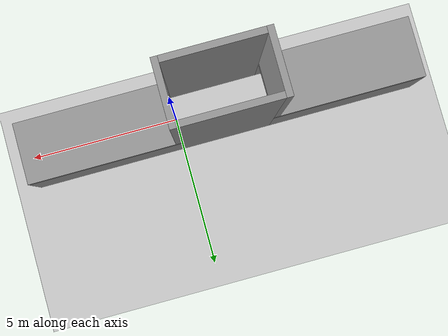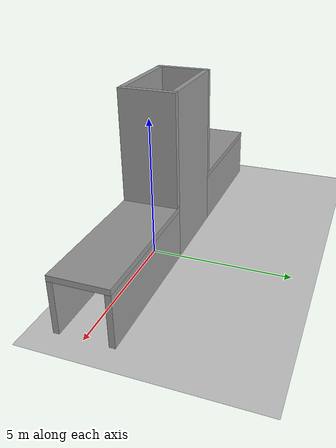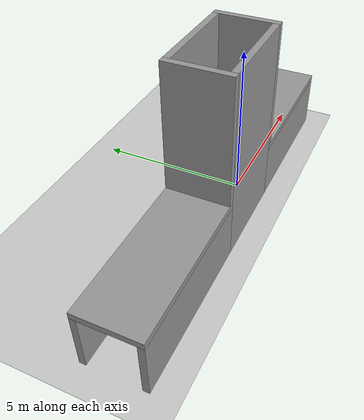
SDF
<sdf version="1.6">
 <world name="default">
  <light name="sun" type="directional">
   <pose>0 0 10 0 -0 0</pose>
   <diffuse>0.8 0.8 0.8 1</diffuse>
   <specular>0.2 0.2 0.2 1</specular>
   <attenuation>
    <range>1000</range>
    <constant>0.9</constant>
    <linear>0.01</linear>
    <quadratic>0.001</quadratic>
   </attenuation>
   <direction>-0.5 0.1 -0.9</direction>
  </light>
  <model name="ground_plane">
   <static>1</static>
   <link name="link">
    <collision name="collision">
     <geometry><plane><normal>0 0 1</normal><size>100 100</size></plane></geometry>
     <surface><friction><ode><mu>100</mu><mu2>50</mu2></ode></friction></surface>
    </collision>
    <visual name="visual">
     <cast_shadows>0</cast_shadows>
     <geometry><plane><normal>0 0 1</normal><size>100 100</size></plane></geometry>
     <material>
      <script><uri>file://media/materials/scripts/gazebo.material</uri><name>Gazebo/Grey</name></script>
     </material>
    </visual>
   </link>
  </model>
  <gravity>0 0 -9.8</gravity>
  <magnetic_field>6e-06 2.3e-05 -4.2e-05</magnetic_field>
  <atmosphere type="adiabatic"/>
  <physics name="default_physics" default="0" type="ode">
   <max_step_size>0.001</max_step_size>
   <real_time_factor>1</real_time_factor>
   <real_time_update_rate>1000</real_time_update_rate>
  </physics>
  <scene><ambient>0.4 0.4 0.4 1</ambient><background>0.7 0.7 0.7 1</background><shadows>1</shadows></scene>
  <spherical_coordinates>
   <surface_model>EARTH_WGS84</surface_model>
   <latitude_deg>0</latitude_deg>
   <longitude_deg>0</longitude_deg>
   <elevation>0</elevation>
   <heading_deg>0</heading_deg>
  </spherical_coordinates>
  <model name="tunel">
   <link name="link_0">
    <inertial>
     <mass>1</mass>
     <inertia>
      <ixx>0.166667</ixx>
      <ixy>0</ixy>
      <ixz>0</ixz>
      <iyy>0.166667</iyy>
      <iyz>0</iyz>
      <izz>0.166667</izz>
     </inertia>
    </inertial>
    <pose>4 0.9 -1.24 0 -0 0</pose>
    <visual name="visual">
     <geometry><box><size>5 0.2 1.8</size></box></geometry>
     <material>
      <lighting>1</lighting>
      <script><uri>file://media/materials/scripts/gazebo.material</uri><name>Gazebo/Grey</name></script>
      <shader type="pixel"><normal_map>__default__</normal_map></shader>
      <ambient>0.3 0.3 0.3 1</ambient>
      <diffuse>0.7 0.7 0.7 1</diffuse>
      <specular>0.01 0.01 0.01 1</specular>
      <emissive>0 0 0 1</emissive>
     </material>
    </visual>
    <collision name="collision">
     <geometry><box><size>5 0.2 1.8</size></box></geometry>
     <surface>
      <friction>
       <ode><mu>1</mu><mu2>1</mu2><fdir1>0 0 0</fdir1><slip1>0</slip1><slip2>0</slip2></ode>
       <torsional>
        <coefficient>1</coefficient>
        <patch_radius>0</patch_radius>
        <surface_radius>0</surface_radius>
        <use_patch_radius>1</use_patch_radius>
        <ode><slip>0</slip></ode>
       </torsional>
      </friction>
      <bounce><restitution_coefficient>0</restitution_coefficient><threshold>1e+06</threshold></bounce>
      <contact>
       <collide_without_contact>0</collide_without_contact>
       <collide_without_contact_bitmask>1</collide_without_contact_bitmask>
       <collide_bitmask>1</collide_bitmask>
       <ode>
        <soft_cfm>0</soft_cfm>
        <soft_erp>0.2</soft_erp>
        <kp>1e+13</kp>
        <kd>1</kd>
        <max_vel>0.01</max_vel>
        <min_depth>0</min_depth>
       </ode>
       <bullet>
        <split_impulse>1</split_impulse>
        <split_impulse_penetration_threshold>-0.01</split_impulse_penetration_threshold>
        <soft_cfm>0</soft_cfm>
        <soft_erp>0.2</soft_erp>
        <kp>1e+13</kp>
        <kd>1</kd>
       </bullet>
      </contact>
     </surface>
    </collision>
   </link>
   <link name="link_0_clone">
    <inertial>
     <mass>1</mass>
     <inertia>
      <ixx>0.166667</ixx>
      <ixy>0</ixy>
      <ixz>0</ixz>
      <iyy>0.166667</iyy>
      <iyz>0</iyz>
      <izz>0.166667</izz>
     </inertia>
    </inertial>
    <pose>4 -0.9 -1.24 0 -0 0</pose>
    <visual name="visual">
     <geometry><box><size>5 0.2 1.8</size></box></geometry>
     <material>
      <lighting>1</lighting>
      <script><uri>file://media/materials/scripts/gazebo.material</uri><name>Gazebo/Grey</name></script>
      <shader type="pixel"><normal_map>__default__</normal_map></shader>
      <ambient>0.3 0.3 0.3 1</ambient>
      <diffuse>0.7 0.7 0.7 1</diffuse>
      <specular>0.01 0.01 0.01 1</specular>
      <emissive>0 0 0 1</emissive>
     </material>
    </visual>
    <collision name="collision">
     <geometry><box><size>5 0.2 1.8</size></box></geometry>
     <surface>
      <friction>
       <ode><mu>1</mu><mu2>1</mu2><fdir1>0 0 0</fdir1><slip1>0</slip1><slip2>0</slip2></ode>
       <torsional>
        <coefficient>1</coefficient>
        <patch_radius>0</patch_radius>
        <surface_radius>0</surface_radius>
        <use_patch_radius>1</use_patch_radius>
        <ode><slip>0</slip></ode>
       </torsional>
      </friction>
      <bounce><restitution_coefficient>0</restitution_coefficient><threshold>1e+06</threshold></bounce>
      <contact>
       <collide_without_contact>0</collide_without_contact>
       <collide_without_contact_bitmask>1</collide_without_contact_bitmask>
       <collide_bitmask>1</collide_bitmask>
       <ode>
        <soft_cfm>0</soft_cfm>
        <soft_erp>0.2</soft_erp>
        <kp>1e+13</kp>
        <kd>1</kd>
        <max_vel>0.01</max_vel>
        <min_depth>0</min_depth>
       </ode>
       <bullet>
        <split_impulse>1</split_impulse>
        <split_impulse_penetration_threshold>-0.01</split_impulse_penetration_threshold>
        <soft_cfm>0</soft_cfm>
        <soft_erp>0.2</soft_erp>
        <kp>1e+13</kp>
        <kd>1</kd>
       </bullet>
      </contact>
     </surface>
    </collision>
   </link>
   <link name="link_0_clone_0">
    <inertial>
     <mass>1</mass>
     <inertia>
      <ixx>0.166667</ixx>
      <ixy>0</ixy>
      <ixz>0</ixz>
      <iyy>0.166667</iyy>
      <iyz>0</iyz>
      <izz>0.166667</izz>
     </inertia>
    </inertial>
    <pose>-4 0.9 -1.24 0 -0 0</pose>
    <visual name="visual">
     <geometry><box><size>5 0.2 1.8</size></box></geometry>
     <material>
      <lighting>1</lighting>
      <script><uri>file://media/materials/scripts/gazebo.material</uri><name>Gazebo/Grey</name></script>
      <shader type="pixel"><normal_map>__default__</normal_map></shader>
      <ambient>0.3 0.3 0.3 1</ambient>
      <diffuse>0.7 0.7 0.7 1</diffuse>
      <specular>0.01 0.01 0.01 1</specular>
      <emissive>0 0 0 1</emissive>
     </material>
    </visual>
    <collision name="collision">
     <geometry><box><size>5 0.2 1.8</size></box></geometry>
     <surface>
      <friction>
       <ode><mu>1</mu><mu2>1</mu2><fdir1>0 0 0</fdir1><slip1>0</slip1><slip2>0</slip2></ode>
       <torsional>
        <coefficient>1</coefficient>
        <patch_radius>0</patch_radius>
        <surface_radius>0</surface_radius>
        <use_patch_radius>1</use_patch_radius>
        <ode><slip>0</slip></ode>
       </torsional>
      </friction>
      <bounce><restitution_coefficient>0</restitution_coefficient><threshold>1e+06</threshold></bounce>
      <contact>
       <collide_without_contact>0</collide_without_contact>
       <collide_without_contact_bitmask>1</collide_without_contact_bitmask>
       <collide_bitmask>1</collide_bitmask>
       <ode>
        <soft_cfm>0</soft_cfm>
        <soft_erp>0.2</soft_erp>
        <kp>1e+13</kp>
        <kd>1</kd>
        <max_vel>0.01</max_vel>
        <min_depth>0</min_depth>
       </ode>
       <bullet>
        <split_impulse>1</split_impulse>
        <split_impulse_penetration_threshold>-0.01</split_impulse_penetration_threshold>
        <soft_cfm>0</soft_cfm>
        <soft_erp>0.2</soft_erp>
        <kp>1e+13</kp>
        <kd>1</kd>
       </bullet>
      </contact>
     </surface>
    </collision>
   </link>
   <link name="link_0_clone_clone">
    <inertial>
     <mass>1</mass>
     <inertia>
      <ixx>0.166667</ixx>
      <ixy>0</ixy>
      <ixz>0</ixz>
      <iyy>0.166667</iyy>
      <iyz>0</iyz>
      <izz>0.166667</izz>
     </inertia>
    </inertial>
    <pose>-4 -0.9 -1.24 0 -0 0</pose>
    <visual name="visual">
     <geometry><box><size>5 0.2 1.8</size></box></geometry>
     <material>
      <lighting>1</lighting>
      <script><uri>file://media/materials/scripts/gazebo.material</uri><name>Gazebo/Grey</name></script>
      <shader type="pixel"><normal_map>__default__</normal_map></shader>
      <ambient>0.3 0.3 0.3 1</ambient>
      <diffuse>0.7 0.7 0.7 1</diffuse>
      <specular>0.01 0.01 0.01 1</specular>
      <emissive>0 0 0 1</emissive>
     </material>
    </visual>
    <collision name="collision">
     <geometry><box><size>5 0.2 1.8</size></box></geometry>
     <surface>
      <friction>
       <ode><mu>1</mu><mu2>1</mu2><fdir1>0 0 0</fdir1><slip1>0</slip1><slip2>0</slip2></ode>
       <torsional>
        <coefficient>1</coefficient>
        <patch_radius>0</patch_radius>
        <surface_radius>0</surface_radius>
        <use_patch_radius>1</use_patch_radius>
        <ode><slip>0</slip></ode>
       </torsional>
      </friction>
      <bounce><restitution_coefficient>0</restitution_coefficient><threshold>1e+06</threshold></bounce>
      <contact>
       <collide_without_contact>0</collide_without_contact>
       <collide_without_contact_bitmask>1</collide_without_contact_bitmask>
       <collide_bitmask>1</collide_bitmask>
       <ode>
        <soft_cfm>0</soft_cfm>
        <soft_erp>0.2</soft_erp>
        <kp>1e+13</kp>
        <kd>1</kd>
        <max_vel>0.01</max_vel>
        <min_depth>0</min_depth>
       </ode>
       <bullet>
        <split_impulse>1</split_impulse>
        <split_impulse_penetration_threshold>-0.01</split_impulse_penetration_threshold>
        <soft_cfm>0</soft_cfm>
        <soft_erp>0.2</soft_erp>
        <kp>1e+13</kp>
        <kd>1</kd>
       </bullet>
      </contact>
     </surface>
    </collision>
   </link>
   <link name="link_1">
    <inertial>
     <mass>1.08843</mass>
     <inertia><ixx>0.141859</ixx><ixy>0</ixy><ixz>0</ixz><iyy>1.45366</iyy><iyz>0</iyz><izz>1.58664</izz></inertia>
    </inertial>
    <pose>4 0 -0.24 0 -0 0</pose>
    <visual name="visual">
     <geometry><box><size>5 2 0.2</size></box></geometry>
     <material>
      <lighting>1</lighting>
      <script><uri>file://media/materials/scripts/gazebo.material</uri><name>Gazebo/Grey</name></script>
      <shader type="pixel"><normal_map>__default__</normal_map></shader>
      <ambient>0.3 0.3 0.3 1</ambient>
      <diffuse>0.7 0.7 0.7 1</diffuse>
      <specular>0.01 0.01 0.01 1</specular>
      <emissive>0 0 0 1</emissive>
     </material>
    </visual>
    <collision name="collision">
     <geometry><box><size>5 2 0.2</size></box></geometry>
     <surface>
      <friction>
       <ode><mu>1</mu><mu2>1</mu2><fdir1>0 0 0</fdir1><slip1>0</slip1><slip2>0</slip2></ode>
       <torsional>
        <coefficient>1</coefficient>
        <patch_radius>0</patch_radius>
        <surface_radius>0</surface_radius>
        <use_patch_radius>1</use_patch_radius>
        <ode><slip>0</slip></ode>
       </torsional>
      </friction>
      <bounce><restitution_coefficient>0</restitution_coefficient><threshold>1e+06</threshold></bounce>
      <contact>
       <collide_without_contact>0</collide_without_contact>
       <collide_without_contact_bitmask>1</collide_without_contact_bitmask>
       <collide_bitmask>1</collide_bitmask>
       <ode>
        <soft_cfm>0</soft_cfm>
        <soft_erp>0.2</soft_erp>
        <kp>1e+13</kp>
        <kd>1</kd>
        <max_vel>0.01</max_vel>
        <min_depth>0</min_depth>
       </ode>
       <bullet>
        <split_impulse>1</split_impulse>
        <split_impulse_penetration_threshold>-0.01</split_impulse_penetration_threshold>
        <soft_cfm>0</soft_cfm>
        <soft_erp>0.2</soft_erp>
        <kp>1e+13</kp>
        <kd>1</kd>
       </bullet>
      </contact>
     </surface>
    </collision>
   </link>
   <link name="link_1_clone">
    <inertial>
     <mass>1.08843</mass>
     <inertia><ixx>0.141859</ixx><ixy>0</ixy><ixz>0</ixz><iyy>1.45366</iyy><iyz>0</iyz><izz>1.58664</izz></inertia>
    </inertial>
    <pose>-4 0 -0.24 0 -0 0</pose>
    <visual name="visual">
     <geometry><box><size>5 2 0.2</size></box></geometry>
     <material>
      <lighting>1</lighting>
      <script><uri>file://media/materials/scripts/gazebo.material</uri><name>Gazebo/Grey</name></script>
      <shader type="pixel"><normal_map>__default__</normal_map></shader>
      <ambient>0.3 0.3 0.3 1</ambient>
      <diffuse>0.7 0.7 0.7 1</diffuse>
      <specular>0.01 0.01 0.01 1</specular>
      <emissive>0 0 0 1</emissive>
     </material>
    </visual>
    <collision name="collision">
     <geometry><box><size>5 2 0.2</size></box></geometry>
     <surface>
      <friction>
       <ode><mu>1</mu><mu2>1</mu2><fdir1>0 0 0</fdir1><slip1>0</slip1><slip2>0</slip2></ode>
       <torsional>
        <coefficient>1</coefficient>
        <patch_radius>0</patch_radius>
        <surface_radius>0</surface_radius>
        <use_patch_radius>1</use_patch_radius>
        <ode><slip>0</slip></ode>
       </torsional>
      </friction>
      <bounce><restitution_coefficient>0</restitution_coefficient><threshold>1e+06</threshold></bounce>
      <contact>
       <collide_without_contact>0</collide_without_contact>
       <collide_without_contact_bitmask>1</collide_without_contact_bitmask>
       <collide_bitmask>1</collide_bitmask>
       <ode>
        <soft_cfm>0</soft_cfm>
        <soft_erp>0.2</soft_erp>
        <kp>1e+13</kp>
        <kd>1</kd>
        <max_vel>0.01</max_vel>
        <min_depth>0</min_depth>
       </ode>
       <bullet>
        <split_impulse>1</split_impulse>
        <split_impulse_penetration_threshold>-0.01</split_impulse_penetration_threshold>
        <soft_cfm>0</soft_cfm>
        <soft_erp>0.2</soft_erp>
        <kp>1e+13</kp>
        <kd>1</kd>
       </bullet>
      </contact>
     </surface>
    </collision>
   </link>
   <link name="link_2">
    <inertial>
     <mass>2.08237</mass>
     <inertia><ixx>6.19248</ixx><ixy>0</ixy><ixz>0</ixz><iyy>7.0406</iyy><iyz>0</iyz><izz>0.856734</izz></inertia>
    </inertial>
    <pose>0 -0.9 0.86 0 -0 0</pose>
    <visual name="visual">
     <geometry><box><size>3 0.2 6</size></box></geometry>
     <material>
      <lighting>1</lighting>
      <script><uri>file://media/materials/scripts/gazebo.material</uri><name>Gazebo/Grey</name></script>
      <shader type="pixel"><normal_map>__default__</normal_map></shader>
      <ambient>0.3 0.3 0.3 1</ambient>
      <diffuse>0.7 0.7 0.7 1</diffuse>
      <specular>0.01 0.01 0.01 1</specular>
      <emissive>0 0 0 1</emissive>
     </material>
    </visual>
    <collision name="collision">
     <geometry><box><size>3 0.2 6</size></box></geometry>
     <surface>
      <friction>
       <ode><mu>1</mu><mu2>1</mu2><fdir1>0 0 0</fdir1><slip1>0</slip1><slip2>0</slip2></ode>
       <torsional>
        <coefficient>1</coefficient>
        <patch_radius>0</patch_radius>
        <surface_radius>0</surface_radius>
        <use_patch_radius>1</use_patch_radius>
        <ode><slip>0</slip></ode>
       </torsional>
      </friction>
      <bounce><restitution_coefficient>0</restitution_coefficient><threshold>1e+06</threshold></bounce>
      <contact>
       <collide_without_contact>0</collide_without_contact>
       <collide_without_contact_bitmask>1</collide_without_contact_bitmask>
       <collide_bitmask>1</collide_bitmask>
       <ode>
        <soft_cfm>0</soft_cfm>
        <soft_erp>0.2</soft_erp>
        <kp>1e+13</kp>
        <kd>1</kd>
        <max_vel>0.01</max_vel>
        <min_depth>0</min_depth>
       </ode>
       <bullet>
        <split_impulse>1</split_impulse>
        <split_impulse_penetration_threshold>-0.01</split_impulse_penetration_threshold>
        <soft_cfm>0</soft_cfm>
        <soft_erp>0.2</soft_erp>
        <kp>1e+13</kp>
        <kd>1</kd>
       </bullet>
      </contact>
     </surface>
    </collision>
   </link>
   <link name="link_2_clone">
    <inertial>
     <mass>2.08237</mass>
     <inertia><ixx>6.19248</ixx><ixy>0</ixy><ixz>0</ixz><iyy>7.0406</iyy><iyz>0</iyz><izz>0.856734</izz></inertia>
    </inertial>
    <pose>0 0.9 0.86 0 -0 0</pose>
    <visual name="visual">
     <geometry><box><size>3 0.2 6</size></box></geometry>
     <material>
      <lighting>1</lighting>
      <script><uri>file://media/materials/scripts/gazebo.material</uri><name>Gazebo/Grey</name></script>
      <shader type="pixel"><normal_map>__default__</normal_map></shader>
      <ambient>0.3 0.3 0.3 1</ambient>
      <diffuse>0.7 0.7 0.7 1</diffuse>
      <specular>0.01 0.01 0.01 1</specular>
      <emissive>0 0 0 1</emissive>
     </material>
    </visual>
    <collision name="collision">
     <geometry><box><size>3 0.2 6</size></box></geometry>
     <surface>
      <friction>
       <ode><mu>1</mu><mu2>1</mu2><fdir1>0 0 0</fdir1><slip1>0</slip1><slip2>0</slip2></ode>
       <torsional>
        <coefficient>1</coefficient>
        <patch_radius>0</patch_radius>
        <surface_radius>0</surface_radius>
        <use_patch_radius>1</use_patch_radius>
        <ode><slip>0</slip></ode>
       </torsional>
      </friction>
      <bounce><restitution_coefficient>0</restitution_coefficient><threshold>1e+06</threshold></bounce>
      <contact>
       <collide_without_contact>0</collide_without_contact>
       <collide_without_contact_bitmask>1</collide_without_contact_bitmask>
       <collide_bitmask>1</collide_bitmask>
       <ode>
        <soft_cfm>0</soft_cfm>
        <soft_erp>0.2</soft_erp>
        <kp>1e+13</kp>
        <kd>1</kd>
        <max_vel>0.01</max_vel>
        <min_depth>0</min_depth>
       </ode>
       <bullet>
        <split_impulse>1</split_impulse>
        <split_impulse_penetration_threshold>-0.01</split_impulse_penetration_threshold>
        <soft_cfm>0</soft_cfm>
        <soft_erp>0.2</soft_erp>
        <kp>1e+13</kp>
        <kd>1</kd>
       </bullet>
      </contact>
     </surface>
    </collision>
   </link>
   <link name="link_3">
    <inertial>
     <mass>1.47198</mass>
     <inertia><ixx>3.97176</ixx><ixy>0</ixy><ixz>0</ixz><iyy>3.74854</iyy><iyz>0</iyz><izz>0.232586</izz></inertia>
    </inertial>
    <pose>-1.6 0 1.86 0 -0 0</pose>
    <visual name="visual">
     <geometry><box><size>0.2 2 4</size></box></geometry>
     <material>
      <lighting>1</lighting>
      <script><uri>file://media/materials/scripts/gazebo.material</uri><name>Gazebo/Grey</name></script>
      <shader type="pixel"><normal_map>__default__</normal_map></shader>
      <ambient>0.3 0.3 0.3 1</ambient>
      <diffuse>0.7 0.7 0.7 1</diffuse>
      <specular>0.01 0.01 0.01 1</specular>
      <emissive>0 0 0 1</emissive>
     </material>
    </visual>
    <collision name="collision">
     <geometry><box><size>0.2 2 4</size></box></geometry>
     <surface>
      <friction>
       <ode><mu>1</mu><mu2>1</mu2><fdir1>0 0 0</fdir1><slip1>0</slip1><slip2>0</slip2></ode>
       <torsional>
        <coefficient>1</coefficient>
        <patch_radius>0</patch_radius>
        <surface_radius>0</surface_radius>
        <use_patch_radius>1</use_patch_radius>
        <ode><slip>0</slip></ode>
       </torsional>
      </friction>
      <bounce><restitution_coefficient>0</restitution_coefficient><threshold>1e+06</threshold></bounce>
      <contact>
       <collide_without_contact>0</collide_without_contact>
       <collide_without_contact_bitmask>1</collide_without_contact_bitmask>
       <collide_bitmask>1</collide_bitmask>
       <ode>
        <soft_cfm>0</soft_cfm>
        <soft_erp>0.2</soft_erp>
        <kp>1e+13</kp>
        <kd>1</kd>
        <max_vel>0.01</max_vel>
        <min_depth>0</min_depth>
       </ode>
       <bullet>
        <split_impulse>1</split_impulse>
        <split_impulse_penetration_threshold>-0.01</split_impulse_penetration_threshold>
        <soft_cfm>0</soft_cfm>
        <soft_erp>0.2</soft_erp>
        <kp>1e+13</kp>
        <kd>1</kd>
       </bullet>
      </contact>
     </surface>
    </collision>
   </link>
   <link name="link_3_clone">
    <inertial>
     <mass>1.47198</mass>
     <inertia><ixx>3.97176</ixx><ixy>0</ixy><ixz>0</ixz><iyy>3.74854</iyy><iyz>0</iyz><izz>0.232586</izz></inertia>
    </inertial>
    <pose>1.6 0 1.86 0 -0 0</pose>
    <visual name="visual">
     <geometry><box><size>0.2 2 4</size></box></geometry>
     <material>
      <lighting>1</lighting>
      <script><uri>file://media/materials/scripts/gazebo.material</uri><name>Gazebo/Grey</name></script>
      <shader type="pixel"><normal_map>__default__</normal_map></shader>
      <ambient>0.3 0.3 0.3 1</ambient>
      <diffuse>0.7 0.7 0.7 1</diffuse>
      <specular>0.01 0.01 0.01 1</specular>
      <emissive>0 0 0 1</emissive>
     </material>
    </visual>
    <collision name="collision">
     <geometry><box><size>0.2 2 4</size></box></geometry>
     <surface>
      <friction>
       <ode><mu>1</mu><mu2>1</mu2><fdir1>0 0 0</fdir1><slip1>0</slip1><slip2>0</slip2></ode>
       <torsional>
        <coefficient>1</coefficient>
        <patch_radius>0</patch_radius>
        <surface_radius>0</surface_radius>
        <use_patch_radius>1</use_patch_radius>
        <ode><slip>0</slip></ode>
       </torsional>
      </friction>
      <bounce><restitution_coefficient>0</restitution_coefficient><threshold>1e+06</threshold></bounce>
      <contact>
       <collide_without_contact>0</collide_without_contact>
       <collide_without_contact_bitmask>1</collide_without_contact_bitmask>
       <collide_bitmask>1</collide_bitmask>
       <ode>
        <soft_cfm>0</soft_cfm>
        <soft_erp>0.2</soft_erp>
        <kp>1e+13</kp>
        <kd>1</kd>
        <max_vel>0.01</max_vel>
        <min_depth>0</min_depth>
       </ode>
       <bullet>
        <split_impulse>1</split_impulse>
        <split_impulse_penetration_threshold>-0.01</split_impulse_penetration_threshold>
        <soft_cfm>0</soft_cfm>
        <soft_erp>0.2</soft_erp>
        <kp>1e+13</kp>
        <kd>1</kd>
       </bullet>
      </contact>
     </surface>
    </collision>
   </link>
   <joint name="link_0_JOINT_2" type="fixed">
    <parent>link_0</parent>
    <child>link_2_clone</child>
    <physics>
     <ode><limit><cfm>0</cfm><erp>0.2</erp></limit><suspension><cfm>0</cfm><erp>0.2</erp></suspension></ode>
    </physics>
   </joint>
   <joint name="link_0_JOINT_3" type="fixed">
    <parent>link_0_clone</parent>
    <child>link_2</child>
    <physics>
     <ode><limit><cfm>0</cfm><erp>0.2</erp></limit><suspension><cfm>0</cfm><erp>0.2</erp></suspension></ode>
    </physics>
   </joint>
   <joint name="link_0_clone_0_JOINT_4" type="fixed">
    <parent>link_0_clone_0</parent>
    <child>link_1_clone</child>
    <physics>
     <ode><limit><cfm>0</cfm><erp>0.2</erp></limit><suspension><cfm>0</cfm><erp>0.2</erp></suspension></ode>
    </physics>
   </joint>
   <joint name="link_0_clone_0_JOINT_5" type="fixed">
    <parent>link_0_clone_0</parent>
    <child>link_2_clone</child>
    <physics>
     <ode><limit><cfm>0</cfm><erp>0.2</erp></limit><suspension><cfm>0</cfm><erp>0.2</erp></suspension></ode>
    </physics>
   </joint>
   <joint name="link_0_clone_clone_JOINT_6" type="fixed">
    <parent>link_0_clone_clone</parent>
    <child>link_1_clone</child>
    <physics>
     <ode><limit><cfm>0</cfm><erp>0.2</erp></limit><suspension><cfm>0</cfm><erp>0.2</erp></suspension></ode>
    </physics>
   </joint>
   <joint name="link_0_clone_clone_JOINT_7" type="fixed">
    <parent>link_0_clone_clone</parent>
    <child>link_2</child>
    <physics>
     <ode><limit><cfm>0</cfm><erp>0.2</erp></limit><suspension><cfm>0</cfm><erp>0.2</erp></suspension></ode>
    </physics>
   </joint>
   <joint name="link_1_JOINT_0" type="fixed">
    <parent>link_1</parent>
    <child>link_0_clone</child>
    <physics>
     <ode><limit><cfm>0</cfm><erp>0.2</erp></limit><suspension><cfm>0</cfm><erp>0.2</erp></suspension></ode>
    </physics>
   </joint>
   <joint name="link_1_JOINT_1" type="fixed">
    <parent>link_1</parent>
    <child>link_0</child>
    <physics>
     <ode><limit><cfm>0</cfm><erp>0.2</erp></limit><suspension><cfm>0</cfm><erp>0.2</erp></suspension></ode>
    </physics>
   </joint>
   <joint name="link_2_JOINT_10" type="fixed">
    <parent>link_2</parent>
    <child>link_3_clone</child>
    <physics>
     <ode><limit><cfm>0</cfm><erp>0.2</erp></limit><suspension><cfm>0</cfm><erp>0.2</erp></suspension></ode>
    </physics>
   </joint>
   <joint name="link_2_JOINT_9" type="fixed">
    <parent>link_2</parent>
    <child>link_3</child>
    <physics>
     <ode><limit><cfm>0</cfm><erp>0.2</erp></limit><suspension><cfm>0</cfm><erp>0.2</erp></suspension></ode>
    </physics>
   </joint>
   <joint name="link_2_clone_JOINT_11" type="fixed">
    <parent>link_2_clone</parent>
    <child>link_3_clone</child>
    <physics>
     <ode><limit><cfm>0</cfm><erp>0.2</erp></limit><suspension><cfm>0</cfm><erp>0.2</erp></suspension></ode>
    </physics>
   </joint>
   <joint name="link_2_clone_JOINT_8" type="fixed">
    <parent>link_2_clone</parent>
    <child>link_3</child>
    <physics>
     <ode><limit><cfm>0</cfm><erp>0.2</erp></limit><suspension><cfm>0</cfm><erp>0.2</erp></suspension></ode>
    </physics>
   </joint>
   <static>0</static>
   <pose>-1.50017 0.00649 2.14 0 -0 0.001673</pose>
  </model>
  <plugin name="gazebo_octomap" filename="libBuildOctomapPlugin.so"/>
 </world>
</sdf>
